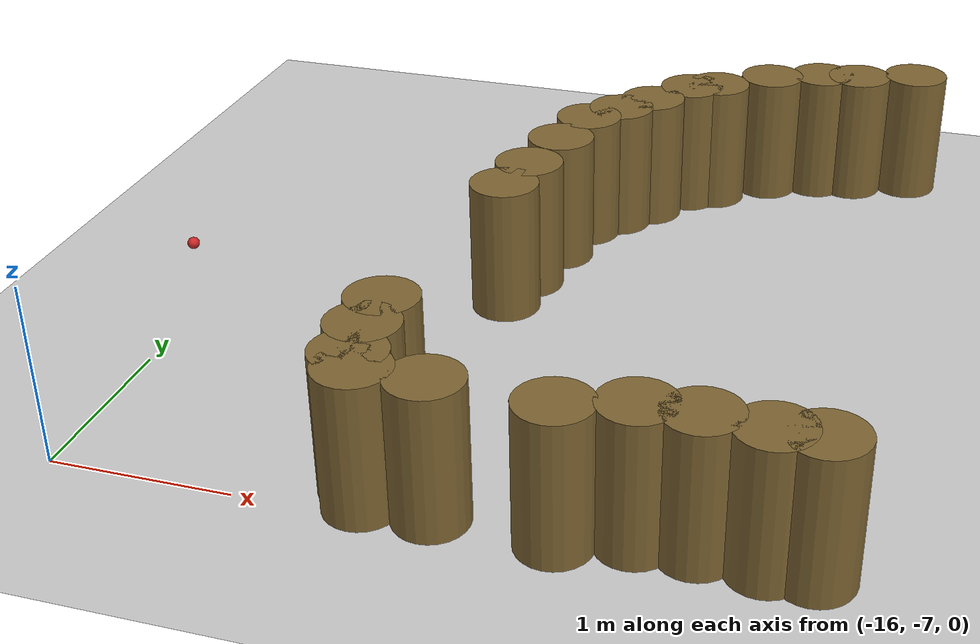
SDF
<sdf version="1.6">
 <world name="default">
  <model name="ground_plane">
   <static>1</static>
   <link name="link">
    <collision name="collision">
     <geometry><plane><normal>0 0 1</normal><size>100 100</size></plane></geometry>
     <surface><friction><ode><mu>100</mu><mu2>50</mu2></ode></friction></surface>
    </collision>
    <visual name="visual">
     <cast_shadows>0</cast_shadows>
     <geometry><plane><normal>0 0 1</normal><size>100 100</size></plane></geometry>
     <material>
      <script><uri>file://media/materials/scripts/gazebo.material</uri><name>Gazebo/Grey</name></script>
     </material>
    </visual>
   </link>
  </model>
  <model name="target_5">
   <link name="link">
    <pose>0 0 0.0375 0 -0 0</pose>
    <inertial>
     <mass>0.1467</mass>
     <inertia>
      <ixx>8.25187e-05</ixx>
      <ixy>0</ixy>
      <ixz>0</ixz>
      <iyy>8.25187e-05</iyy>
      <iyz>0</iyz>
      <izz>8.25187e-05</izz>
     </inertia>
    </inertial>
    <velocity_decay><linear>0</linear><angular>0.005</angular></velocity_decay>
    <visual name="visual">
     <geometry><sphere><radius>0.0375</radius></sphere></geometry>
     <material>
      <script><uri>file://media/materials/scripts/gazebo.material</uri><name>Gazebo/Red</name></script>
      <shader type="pixel"/>
     </material>
    </visual>
    <collision name="collision">
     <geometry><sphere><radius>0.0375</radius></sphere></geometry>
     <surface>
      <friction>
       <ode><mu>1</mu><mu2>1</mu2><fdir1>0 0 0</fdir1><slip1>0</slip1><slip2>0</slip2></ode>
       <torsional>
        <coefficient>1</coefficient>
        <patch_radius>0</patch_radius>
        <surface_radius>0.01</surface_radius>
        <use_patch_radius>0</use_patch_radius>
        <ode><slip>0</slip></ode>
       </torsional>
      </friction>
      <bounce><restitution_coefficient>0</restitution_coefficient><threshold>1e+06</threshold></bounce>
      <contact>
       <collide_without_contact>0</collide_without_contact>
       <collide_without_contact_bitmask>1</collide_without_contact_bitmask>
       <collide_bitmask>1</collide_bitmask>
       <ode>
        <soft_cfm>0</soft_cfm>
        <soft_erp>0.2</soft_erp>
        <kp>100000</kp>
        <kd>100</kd>
        <max_vel>100</max_vel>
        <min_depth>0.001</min_depth>
       </ode>
       <bullet>
        <split_impulse>1</split_impulse>
        <split_impulse_penetration_threshold>-0.01</split_impulse_penetration_threshold>
        <soft_cfm>0</soft_cfm>
        <soft_erp>0.2</soft_erp>
        <kp>100000</kp>
        <kd>100</kd>
       </bullet>
      </contact>
     </surface>
    </collision>
   </link>
   <static>0</static>
   <pose>-16.3973 -4.73224 -0.001014 0 -0 0</pose>
  </model>
  <model name="mini_cylinder_0_clone_0_clone_clone_clone_clone_3_clone">
   <link name="link">
    <inertial>
     <mass>1</mass>
     <inertia><ixx>0.145833</ixx><ixy>0</ixy><ixz>0</ixz><iyy>0.145833</iyy><iyz>0</iyz><izz>0.125</izz></inertia>
    </inertial>
    <visual name="visual">
     <geometry><cylinder><radius>0.2</radius><length>0.8</length></cylinder></geometry>
     <material>
      <script><name>Gazebo/Grey</name><uri>file://media/materials/scripts/gazebo.material</uri></script>
      <shader type="vertex"><normal_map>__default__</normal_map></shader>
      <ambient>0.5 0.4 0.2 1</ambient>
      <diffuse>0.7 0.7 0.7 1</diffuse>
      <specular>0.01 0.01 0.01 1</specular>
      <emissive>0 0 0 1</emissive>
     </material>
    </visual>
    <collision name="collision">
     <geometry><cylinder><radius>0.2</radius><length>0.8</length></cylinder></geometry>
     <surface>
      <friction>
       <ode><mu>1</mu><mu2>1</mu2><fdir1>0 0 0</fdir1><slip1>0</slip1><slip2>0</slip2></ode>
       <torsional>
        <coefficient>1</coefficient>
        <patch_radius>0</patch_radius>
        <surface_radius>0</surface_radius>
        <use_patch_radius>1</use_patch_radius>
        <ode><slip>0</slip></ode>
       </torsional>
      </friction>
      <bounce><restitution_coefficient>0</restitution_coefficient><threshold>1e+06</threshold></bounce>
      <contact>
       <collide_without_contact>0</collide_without_contact>
       <collide_without_contact_bitmask>1</collide_without_contact_bitmask>
       <collide_bitmask>1</collide_bitmask>
       <ode>
        <soft_cfm>0</soft_cfm>
        <soft_erp>0.2</soft_erp>
        <kp>1e+13</kp>
        <kd>1</kd>
        <max_vel>0.01</max_vel>
        <min_depth>0</min_depth>
       </ode>
       <bullet>
        <split_impulse>1</split_impulse>
        <split_impulse_penetration_threshold>-0.01</split_impulse_penetration_threshold>
        <soft_cfm>0</soft_cfm>
        <soft_erp>0.2</soft_erp>
        <kp>1e+13</kp>
        <kd>1</kd>
       </bullet>
      </contact>
     </surface>
    </collision>
   </link>
   <static>1</static>
   <pose>-14.0743 -3.80563 0.4 0 -0 0</pose>
  </model>
  <model name="mini_cylinder_0_clone_0_clone_clone_clone_clone_3_clone_0">
   <link name="link">
    <inertial>
     <mass>1</mass>
     <inertia><ixx>0.145833</ixx><ixy>0</ixy><ixz>0</ixz><iyy>0.145833</iyy><iyz>0</iyz><izz>0.125</izz></inertia>
    </inertial>
    <visual name="visual">
     <geometry><cylinder><radius>0.2</radius><length>0.8</length></cylinder></geometry>
     <material>
      <script><name>Gazebo/Grey</name><uri>file://media/materials/scripts/gazebo.material</uri></script>
      <shader type="vertex"><normal_map>__default__</normal_map></shader>
      <ambient>0.5 0.4 0.2 1</ambient>
      <diffuse>0.7 0.7 0.7 1</diffuse>
      <specular>0.01 0.01 0.01 1</specular>
      <emissive>0 0 0 1</emissive>
     </material>
    </visual>
    <collision name="collision">
     <geometry><cylinder><radius>0.2</radius><length>0.8</length></cylinder></geometry>
     <surface>
      <friction>
       <ode><mu>1</mu><mu2>1</mu2><fdir1>0 0 0</fdir1><slip1>0</slip1><slip2>0</slip2></ode>
       <torsional>
        <coefficient>1</coefficient>
        <patch_radius>0</patch_radius>
        <surface_radius>0</surface_radius>
        <use_patch_radius>1</use_patch_radius>
        <ode><slip>0</slip></ode>
       </torsional>
      </friction>
      <bounce><restitution_coefficient>0</restitution_coefficient><threshold>1e+06</threshold></bounce>
      <contact>
       <collide_without_contact>0</collide_without_contact>
       <collide_without_contact_bitmask>1</collide_without_contact_bitmask>
       <collide_bitmask>1</collide_bitmask>
       <ode>
        <soft_cfm>0</soft_cfm>
        <soft_erp>0.2</soft_erp>
        <kp>1e+13</kp>
        <kd>1</kd>
        <max_vel>0.01</max_vel>
        <min_depth>0</min_depth>
       </ode>
       <bullet>
        <split_impulse>1</split_impulse>
        <split_impulse_penetration_threshold>-0.01</split_impulse_penetration_threshold>
        <soft_cfm>0</soft_cfm>
        <soft_erp>0.2</soft_erp>
        <kp>1e+13</kp>
        <kd>1</kd>
       </bullet>
      </contact>
     </surface>
    </collision>
   </link>
   <static>1</static>
   <pose>-13.7598 -3.41261 0.4 0 -0 0</pose>
  </model>
  <model name="mini_cylinder_0_clone_0_clone_clone_clone_clone_3_clone_1">
   <link name="link">
    <inertial>
     <mass>1</mass>
     <inertia><ixx>0.145833</ixx><ixy>0</ixy><ixz>0</ixz><iyy>0.145833</iyy><iyz>0</iyz><izz>0.125</izz></inertia>
    </inertial>
    <visual name="visual">
     <geometry><cylinder><radius>0.2</radius><length>0.8</length></cylinder></geometry>
     <material>
      <script><name>Gazebo/Grey</name><uri>file://media/materials/scripts/gazebo.material</uri></script>
      <shader type="vertex"><normal_map>__default__</normal_map></shader>
      <ambient>0.5 0.4 0.2 1</ambient>
      <diffuse>0.7 0.7 0.7 1</diffuse>
      <specular>0.01 0.01 0.01 1</specular>
      <emissive>0 0 0 1</emissive>
     </material>
    </visual>
    <collision name="collision">
     <geometry><cylinder><radius>0.2</radius><length>0.8</length></cylinder></geometry>
     <surface>
      <friction>
       <ode><mu>1</mu><mu2>1</mu2><fdir1>0 0 0</fdir1><slip1>0</slip1><slip2>0</slip2></ode>
       <torsional>
        <coefficient>1</coefficient>
        <patch_radius>0</patch_radius>
        <surface_radius>0</surface_radius>
        <use_patch_radius>1</use_patch_radius>
        <ode><slip>0</slip></ode>
       </torsional>
      </friction>
      <bounce><restitution_coefficient>0</restitution_coefficient><threshold>1e+06</threshold></bounce>
      <contact>
       <collide_without_contact>0</collide_without_contact>
       <collide_without_contact_bitmask>1</collide_without_contact_bitmask>
       <collide_bitmask>1</collide_bitmask>
       <ode>
        <soft_cfm>0</soft_cfm>
        <soft_erp>0.2</soft_erp>
        <kp>1e+13</kp>
        <kd>1</kd>
        <max_vel>0.01</max_vel>
        <min_depth>0</min_depth>
       </ode>
       <bullet>
        <split_impulse>1</split_impulse>
        <split_impulse_penetration_threshold>-0.01</split_impulse_penetration_threshold>
        <soft_cfm>0</soft_cfm>
        <soft_erp>0.2</soft_erp>
        <kp>1e+13</kp>
        <kd>1</kd>
       </bullet>
      </contact>
     </surface>
    </collision>
   </link>
   <static>1</static>
   <pose>-13.4068 -3.05888 0.4 0 -0 0</pose>
  </model>
  <model name="mini_cylinder_0_clone_0_clone_clone_clone_clone_3_clone_2">
   <link name="link">
    <inertial>
     <mass>1</mass>
     <inertia><ixx>0.145833</ixx><ixy>0</ixy><ixz>0</ixz><iyy>0.145833</iyy><iyz>0</iyz><izz>0.125</izz></inertia>
    </inertial>
    <visual name="visual">
     <geometry><cylinder><radius>0.2</radius><length>0.8</length></cylinder></geometry>
     <material>
      <script><name>Gazebo/Grey</name><uri>file://media/materials/scripts/gazebo.material</uri></script>
      <shader type="vertex"><normal_map>__default__</normal_map></shader>
      <ambient>0.5 0.4 0.2 1</ambient>
      <diffuse>0.7 0.7 0.7 1</diffuse>
      <specular>0.01 0.01 0.01 1</specular>
      <emissive>0 0 0 1</emissive>
     </material>
    </visual>
    <collision name="collision">
     <geometry><cylinder><radius>0.2</radius><length>0.8</length></cylinder></geometry>
     <surface>
      <friction>
       <ode><mu>1</mu><mu2>1</mu2><fdir1>0 0 0</fdir1><slip1>0</slip1><slip2>0</slip2></ode>
       <torsional>
        <coefficient>1</coefficient>
        <patch_radius>0</patch_radius>
        <surface_radius>0</surface_radius>
        <use_patch_radius>1</use_patch_radius>
        <ode><slip>0</slip></ode>
       </torsional>
      </friction>
      <bounce><restitution_coefficient>0</restitution_coefficient><threshold>1e+06</threshold></bounce>
      <contact>
       <collide_without_contact>0</collide_without_contact>
       <collide_without_contact_bitmask>1</collide_without_contact_bitmask>
       <collide_bitmask>1</collide_bitmask>
       <ode>
        <soft_cfm>0</soft_cfm>
        <soft_erp>0.2</soft_erp>
        <kp>1e+13</kp>
        <kd>1</kd>
        <max_vel>0.01</max_vel>
        <min_depth>0</min_depth>
       </ode>
       <bullet>
        <split_impulse>1</split_impulse>
        <split_impulse_penetration_threshold>-0.01</split_impulse_penetration_threshold>
        <soft_cfm>0</soft_cfm>
        <soft_erp>0.2</soft_erp>
        <kp>1e+13</kp>
        <kd>1</kd>
       </bullet>
      </contact>
     </surface>
    </collision>
   </link>
   <static>1</static>
   <pose>-13.0931 -2.82342 0.4 0 -0 0</pose>
  </model>
  <model name="mini_cylinder_0_clone_0_clone_clone_clone_clone_3_clone_3">
   <link name="link">
    <inertial>
     <mass>1</mass>
     <inertia><ixx>0.145833</ixx><ixy>0</ixy><ixz>0</ixz><iyy>0.145833</iyy><iyz>0</iyz><izz>0.125</izz></inertia>
    </inertial>
    <visual name="visual">
     <geometry><cylinder><radius>0.2</radius><length>0.8</length></cylinder></geometry>
     <material>
      <script><name>Gazebo/Grey</name><uri>file://media/materials/scripts/gazebo.material</uri></script>
      <shader type="vertex"><normal_map>__default__</normal_map></shader>
      <ambient>0.5 0.4 0.2 1</ambient>
      <diffuse>0.7 0.7 0.7 1</diffuse>
      <specular>0.01 0.01 0.01 1</specular>
      <emissive>0 0 0 1</emissive>
     </material>
    </visual>
    <collision name="collision">
     <geometry><cylinder><radius>0.2</radius><length>0.8</length></cylinder></geometry>
     <surface>
      <friction>
       <ode><mu>1</mu><mu2>1</mu2><fdir1>0 0 0</fdir1><slip1>0</slip1><slip2>0</slip2></ode>
       <torsional>
        <coefficient>1</coefficient>
        <patch_radius>0</patch_radius>
        <surface_radius>0</surface_radius>
        <use_patch_radius>1</use_patch_radius>
        <ode><slip>0</slip></ode>
       </torsional>
      </friction>
      <bounce><restitution_coefficient>0</restitution_coefficient><threshold>1e+06</threshold></bounce>
      <contact>
       <collide_without_contact>0</collide_without_contact>
       <collide_without_contact_bitmask>1</collide_without_contact_bitmask>
       <collide_bitmask>1</collide_bitmask>
       <ode>
        <soft_cfm>0</soft_cfm>
        <soft_erp>0.2</soft_erp>
        <kp>1e+13</kp>
        <kd>1</kd>
        <max_vel>0.01</max_vel>
        <min_depth>0</min_depth>
       </ode>
       <bullet>
        <split_impulse>1</split_impulse>
        <split_impulse_penetration_threshold>-0.01</split_impulse_penetration_threshold>
        <soft_cfm>0</soft_cfm>
        <soft_erp>0.2</soft_erp>
        <kp>1e+13</kp>
        <kd>1</kd>
       </bullet>
      </contact>
     </surface>
    </collision>
   </link>
   <static>1</static>
   <pose>-12.5422 -2.66693 0.4 0 -0 0</pose>
  </model>
  <model name="mini_cylinder_0_clone_0_clone_clone_clone_clone_3_clone_4">
   <link name="link">
    <inertial>
     <mass>1</mass>
     <inertia><ixx>0.145833</ixx><ixy>0</ixy><ixz>0</ixz><iyy>0.145833</iyy><iyz>0</iyz><izz>0.125</izz></inertia>
    </inertial>
    <visual name="visual">
     <geometry><cylinder><radius>0.2</radius><length>0.8</length></cylinder></geometry>
     <material>
      <script><name>Gazebo/Grey</name><uri>file://media/materials/scripts/gazebo.material</uri></script>
      <shader type="vertex"><normal_map>__default__</normal_map></shader>
      <ambient>0.5 0.4 0.2 1</ambient>
      <diffuse>0.7 0.7 0.7 1</diffuse>
      <specular>0.01 0.01 0.01 1</specular>
      <emissive>0 0 0 1</emissive>
     </material>
    </visual>
    <collision name="collision">
     <geometry><cylinder><radius>0.2</radius><length>0.8</length></cylinder></geometry>
     <surface>
      <friction>
       <ode><mu>1</mu><mu2>1</mu2><fdir1>0 0 0</fdir1><slip1>0</slip1><slip2>0</slip2></ode>
       <torsional>
        <coefficient>1</coefficient>
        <patch_radius>0</patch_radius>
        <surface_radius>0</surface_radius>
        <use_patch_radius>1</use_patch_radius>
        <ode><slip>0</slip></ode>
       </torsional>
      </friction>
      <bounce><restitution_coefficient>0</restitution_coefficient><threshold>1e+06</threshold></bounce>
      <contact>
       <collide_without_contact>0</collide_without_contact>
       <collide_without_contact_bitmask>1</collide_without_contact_bitmask>
       <collide_bitmask>1</collide_bitmask>
       <ode>
        <soft_cfm>0</soft_cfm>
        <soft_erp>0.2</soft_erp>
        <kp>1e+13</kp>
        <kd>1</kd>
        <max_vel>0.01</max_vel>
        <min_depth>0</min_depth>
       </ode>
       <bullet>
        <split_impulse>1</split_impulse>
        <split_impulse_penetration_threshold>-0.01</split_impulse_penetration_threshold>
        <soft_cfm>0</soft_cfm>
        <soft_erp>0.2</soft_erp>
        <kp>1e+13</kp>
        <kd>1</kd>
       </bullet>
      </contact>
     </surface>
    </collision>
   </link>
   <static>1</static>
   <pose>-12.7787 -2.70587 0.4 0 -0 0</pose>
  </model>
  <model name="mini_cylinder_0_clone_0_clone_clone_clone_clone_3_clone_5">
   <link name="link">
    <inertial>
     <mass>1</mass>
     <inertia><ixx>0.145833</ixx><ixy>0</ixy><ixz>0</ixz><iyy>0.145833</iyy><iyz>0</iyz><izz>0.125</izz></inertia>
    </inertial>
    <visual name="visual">
     <geometry><cylinder><radius>0.2</radius><length>0.8</length></cylinder></geometry>
     <material>
      <script><name>Gazebo/Grey</name><uri>file://media/materials/scripts/gazebo.material</uri></script>
      <shader type="vertex"><normal_map>__default__</normal_map></shader>
      <ambient>0.5 0.4 0.2 1</ambient>
      <diffuse>0.7 0.7 0.7 1</diffuse>
      <specular>0.01 0.01 0.01 1</specular>
      <emissive>0 0 0 1</emissive>
     </material>
    </visual>
    <collision name="collision">
     <geometry><cylinder><radius>0.2</radius><length>0.8</length></cylinder></geometry>
     <surface>
      <friction>
       <ode><mu>1</mu><mu2>1</mu2><fdir1>0 0 0</fdir1><slip1>0</slip1><slip2>0</slip2></ode>
       <torsional>
        <coefficient>1</coefficient>
        <patch_radius>0</patch_radius>
        <surface_radius>0</surface_radius>
        <use_patch_radius>1</use_patch_radius>
        <ode><slip>0</slip></ode>
       </torsional>
      </friction>
      <bounce><restitution_coefficient>0</restitution_coefficient><threshold>1e+06</threshold></bounce>
      <contact>
       <collide_without_contact>0</collide_without_contact>
       <collide_without_contact_bitmask>1</collide_without_contact_bitmask>
       <collide_bitmask>1</collide_bitmask>
       <ode>
        <soft_cfm>0</soft_cfm>
        <soft_erp>0.2</soft_erp>
        <kp>1e+13</kp>
        <kd>1</kd>
        <max_vel>0.01</max_vel>
        <min_depth>0</min_depth>
       </ode>
       <bullet>
        <split_impulse>1</split_impulse>
        <split_impulse_penetration_threshold>-0.01</split_impulse_penetration_threshold>
        <soft_cfm>0</soft_cfm>
        <soft_erp>0.2</soft_erp>
        <kp>1e+13</kp>
        <kd>1</kd>
       </bullet>
      </contact>
     </surface>
    </collision>
   </link>
   <static>1</static>
   <pose>-12.1892 -2.54938 0.4 0 -0 0</pose>
  </model>
  <model name="mini_cylinder_0_clone_0_clone_clone_clone_clone_3_clone_19">
   <link name="link">
    <inertial>
     <mass>1</mass>
     <inertia><ixx>0.145833</ixx><ixy>0</ixy><ixz>0</ixz><iyy>0.145833</iyy><iyz>0</iyz><izz>0.125</izz></inertia>
    </inertial>
    <visual name="visual">
     <geometry><cylinder><radius>0.2</radius><length>0.8</length></cylinder></geometry>
     <material>
      <script><name>Gazebo/Grey</name><uri>file://media/materials/scripts/gazebo.material</uri></script>
      <shader type="vertex"><normal_map>__default__</normal_map></shader>
      <ambient>0.5 0.4 0.2 1</ambient>
      <diffuse>0.7 0.7 0.7 1</diffuse>
      <specular>0.01 0.01 0.01 1</specular>
      <emissive>0 0 0 1</emissive>
     </material>
    </visual>
    <collision name="collision">
     <geometry><cylinder><radius>0.2</radius><length>0.8</length></cylinder></geometry>
     <surface>
      <friction>
       <ode><mu>1</mu><mu2>1</mu2><fdir1>0 0 0</fdir1><slip1>0</slip1><slip2>0</slip2></ode>
       <torsional>
        <coefficient>1</coefficient>
        <patch_radius>0</patch_radius>
        <surface_radius>0</surface_radius>
        <use_patch_radius>1</use_patch_radius>
        <ode><slip>0</slip></ode>
       </torsional>
      </friction>
      <bounce><restitution_coefficient>0</restitution_coefficient><threshold>1e+06</threshold></bounce>
      <contact>
       <collide_without_contact>0</collide_without_contact>
       <collide_without_contact_bitmask>1</collide_without_contact_bitmask>
       <collide_bitmask>1</collide_bitmask>
       <ode>
        <soft_cfm>0</soft_cfm>
        <soft_erp>0.2</soft_erp>
        <kp>1e+13</kp>
        <kd>1</kd>
        <max_vel>0.01</max_vel>
        <min_depth>0</min_depth>
       </ode>
       <bullet>
        <split_impulse>1</split_impulse>
        <split_impulse_penetration_threshold>-0.01</split_impulse_penetration_threshold>
        <soft_cfm>0</soft_cfm>
        <soft_erp>0.2</soft_erp>
        <kp>1e+13</kp>
        <kd>1</kd>
       </bullet>
      </contact>
     </surface>
    </collision>
   </link>
   <static>1</static>
   <pose>-14.1529 -4.159 0.4 0 -0 0</pose>
  </model>
  <model name="mini_cylinder_0_clone_0_clone_clone_clone_clone_3_clone_20">
   <link name="link">
    <inertial>
     <mass>1</mass>
     <inertia><ixx>0.145833</ixx><ixy>0</ixy><ixz>0</ixz><iyy>0.145833</iyy><iyz>0</iyz><izz>0.125</izz></inertia>
    </inertial>
    <visual name="visual">
     <geometry><cylinder><radius>0.2</radius><length>0.8</length></cylinder></geometry>
     <material>
      <script><name>Gazebo/Grey</name><uri>file://media/materials/scripts/gazebo.material</uri></script>
      <shader type="vertex"><normal_map>__default__</normal_map></shader>
      <ambient>0.5 0.4 0.2 1</ambient>
      <diffuse>0.7 0.7 0.7 1</diffuse>
      <specular>0.01 0.01 0.01 1</specular>
      <emissive>0 0 0 1</emissive>
     </material>
    </visual>
    <collision name="collision">
     <geometry><cylinder><radius>0.2</radius><length>0.8</length></cylinder></geometry>
     <surface>
      <friction>
       <ode><mu>1</mu><mu2>1</mu2><fdir1>0 0 0</fdir1><slip1>0</slip1><slip2>0</slip2></ode>
       <torsional>
        <coefficient>1</coefficient>
        <patch_radius>0</patch_radius>
        <surface_radius>0</surface_radius>
        <use_patch_radius>1</use_patch_radius>
        <ode><slip>0</slip></ode>
       </torsional>
      </friction>
      <bounce><restitution_coefficient>0</restitution_coefficient><threshold>1e+06</threshold></bounce>
      <contact>
       <collide_without_contact>0</collide_without_contact>
       <collide_without_contact_bitmask>1</collide_without_contact_bitmask>
       <collide_bitmask>1</collide_bitmask>
       <ode>
        <soft_cfm>0</soft_cfm>
        <soft_erp>0.2</soft_erp>
        <kp>1e+13</kp>
        <kd>1</kd>
        <max_vel>0.01</max_vel>
        <min_depth>0</min_depth>
       </ode>
       <bullet>
        <split_impulse>1</split_impulse>
        <split_impulse_penetration_threshold>-0.01</split_impulse_penetration_threshold>
        <soft_cfm>0</soft_cfm>
        <soft_erp>0.2</soft_erp>
        <kp>1e+13</kp>
        <kd>1</kd>
       </bullet>
      </contact>
     </surface>
    </collision>
   </link>
   <static>1</static>
   <pose>-14.2315 -4.55202 0.4 0 -0 0</pose>
  </model>
  <model name="mini_cylinder_0_clone_0_clone_clone_clone_clone_3_clone_21">
   <link name="link">
    <inertial>
     <mass>1</mass>
     <inertia><ixx>0.145833</ixx><ixy>0</ixy><ixz>0</ixz><iyy>0.145833</iyy><iyz>0</iyz><izz>0.125</izz></inertia>
    </inertial>
    <visual name="visual">
     <geometry><cylinder><radius>0.2</radius><length>0.8</length></cylinder></geometry>
     <material>
      <script><name>Gazebo/Grey</name><uri>file://media/materials/scripts/gazebo.material</uri></script>
      <shader type="vertex"><normal_map>__default__</normal_map></shader>
      <ambient>0.5 0.4 0.2 1</ambient>
      <diffuse>0.7 0.7 0.7 1</diffuse>
      <specular>0.01 0.01 0.01 1</specular>
      <emissive>0 0 0 1</emissive>
     </material>
    </visual>
    <collision name="collision">
     <geometry><cylinder><radius>0.2</radius><length>0.8</length></cylinder></geometry>
     <surface>
      <friction>
       <ode><mu>1</mu><mu2>1</mu2><fdir1>0 0 0</fdir1><slip1>0</slip1><slip2>0</slip2></ode>
       <torsional>
        <coefficient>1</coefficient>
        <patch_radius>0</patch_radius>
        <surface_radius>0</surface_radius>
        <use_patch_radius>1</use_patch_radius>
        <ode><slip>0</slip></ode>
       </torsional>
      </friction>
      <bounce><restitution_coefficient>0</restitution_coefficient><threshold>1e+06</threshold></bounce>
      <contact>
       <collide_without_contact>0</collide_without_contact>
       <collide_without_contact_bitmask>1</collide_without_contact_bitmask>
       <collide_bitmask>1</collide_bitmask>
       <ode>
        <soft_cfm>0</soft_cfm>
        <soft_erp>0.2</soft_erp>
        <kp>1e+13</kp>
        <kd>1</kd>
        <max_vel>0.01</max_vel>
        <min_depth>0</min_depth>
       </ode>
       <bullet>
        <split_impulse>1</split_impulse>
        <split_impulse_penetration_threshold>-0.01</split_impulse_penetration_threshold>
        <soft_cfm>0</soft_cfm>
        <soft_erp>0.2</soft_erp>
        <kp>1e+13</kp>
        <kd>1</kd>
       </bullet>
      </contact>
     </surface>
    </collision>
   </link>
   <static>1</static>
   <pose>-13.9171 -3.60876 0.4 0 -0 0</pose>
  </model>
  <model name="mini_cylinder_0_clone_0_clone_clone_clone_clone_3_clone_22">
   <link name="link">
    <inertial>
     <mass>1</mass>
     <inertia><ixx>0.145833</ixx><ixy>0</ixy><ixz>0</ixz><iyy>0.145833</iyy><iyz>0</iyz><izz>0.125</izz></inertia>
    </inertial>
    <visual name="visual">
     <geometry><cylinder><radius>0.2</radius><length>0.8</length></cylinder></geometry>
     <material>
      <script><name>Gazebo/Grey</name><uri>file://media/materials/scripts/gazebo.material</uri></script>
      <shader type="vertex"><normal_map>__default__</normal_map></shader>
      <ambient>0.5 0.4 0.2 1</ambient>
      <diffuse>0.7 0.7 0.7 1</diffuse>
      <specular>0.01 0.01 0.01 1</specular>
      <emissive>0 0 0 1</emissive>
     </material>
    </visual>
    <collision name="collision">
     <geometry><cylinder><radius>0.2</radius><length>0.8</length></cylinder></geometry>
     <surface>
      <friction>
       <ode><mu>1</mu><mu2>1</mu2><fdir1>0 0 0</fdir1><slip1>0</slip1><slip2>0</slip2></ode>
       <torsional>
        <coefficient>1</coefficient>
        <patch_radius>0</patch_radius>
        <surface_radius>0</surface_radius>
        <use_patch_radius>1</use_patch_radius>
        <ode><slip>0</slip></ode>
       </torsional>
      </friction>
      <bounce><restitution_coefficient>0</restitution_coefficient><threshold>1e+06</threshold></bounce>
      <contact>
       <collide_without_contact>0</collide_without_contact>
       <collide_without_contact_bitmask>1</collide_without_contact_bitmask>
       <collide_bitmask>1</collide_bitmask>
       <ode>
        <soft_cfm>0</soft_cfm>
        <soft_erp>0.2</soft_erp>
        <kp>1e+13</kp>
        <kd>1</kd>
        <max_vel>0.01</max_vel>
        <min_depth>0</min_depth>
       </ode>
       <bullet>
        <split_impulse>1</split_impulse>
        <split_impulse_penetration_threshold>-0.01</split_impulse_penetration_threshold>
        <soft_cfm>0</soft_cfm>
        <soft_erp>0.2</soft_erp>
        <kp>1e+13</kp>
        <kd>1</kd>
       </bullet>
      </contact>
     </surface>
    </collision>
   </link>
   <static>1</static>
   <pose>-13.564 -3.14385 0.4 0 -0 0</pose>
  </model>
  <model name="mini_cylinder_0_clone_0_clone_clone_clone_clone_3_clone_20_clone_104">
   <link name="link">
    <inertial>
     <mass>1</mass>
     <inertia><ixx>0.145833</ixx><ixy>0</ixy><ixz>0</ixz><iyy>0.145833</iyy><iyz>0</iyz><izz>0.125</izz></inertia>
    </inertial>
    <visual name="visual">
     <geometry><cylinder><radius>0.2</radius><length>0.8</length></cylinder></geometry>
     <material>
      <script><name>Gazebo/Grey</name><uri>file://media/materials/scripts/gazebo.material</uri></script>
      <shader type="vertex"><normal_map>__default__</normal_map></shader>
      <ambient>0.5 0.4 0.2 1</ambient>
      <diffuse>0.7 0.7 0.7 1</diffuse>
      <specular>0.01 0.01 0.01 1</specular>
      <emissive>0 0 0 1</emissive>
     </material>
    </visual>
    <collision name="collision">
     <geometry><cylinder><radius>0.2</radius><length>0.8</length></cylinder></geometry>
     <surface>
      <friction>
       <ode><mu>1</mu><mu2>1</mu2><fdir1>0 0 0</fdir1><slip1>0</slip1><slip2>0</slip2></ode>
       <torsional>
        <coefficient>1</coefficient>
        <patch_radius>0</patch_radius>
        <surface_radius>0</surface_radius>
        <use_patch_radius>1</use_patch_radius>
        <ode><slip>0</slip></ode>
       </torsional>
      </friction>
      <bounce><restitution_coefficient>0</restitution_coefficient><threshold>1e+06</threshold></bounce>
      <contact>
       <collide_without_contact>0</collide_without_contact>
       <collide_without_contact_bitmask>1</collide_without_contact_bitmask>
       <collide_bitmask>1</collide_bitmask>
       <ode>
        <soft_cfm>0</soft_cfm>
        <soft_erp>0.2</soft_erp>
        <kp>1e+13</kp>
        <kd>1</kd>
        <max_vel>0.01</max_vel>
        <min_depth>0</min_depth>
       </ode>
       <bullet>
        <split_impulse>1</split_impulse>
        <split_impulse_penetration_threshold>-0.01</split_impulse_penetration_threshold>
        <soft_cfm>0</soft_cfm>
        <soft_erp>0.2</soft_erp>
        <kp>1e+13</kp>
        <kd>1</kd>
       </bullet>
      </contact>
     </surface>
    </collision>
   </link>
   <static>1</static>
   <pose>-14.2837 -4.86049 0.4 0 -0 0</pose>
  </model>
  <model name="mini_cylinder_0_clone_0_clone_clone_clone_clone_3_clone_20_clone_106">
   <link name="link">
    <inertial>
     <mass>1</mass>
     <inertia><ixx>0.145833</ixx><ixy>0</ixy><ixz>0</ixz><iyy>0.145833</iyy><iyz>0</iyz><izz>0.125</izz></inertia>
    </inertial>
    <visual name="visual">
     <geometry><cylinder><radius>0.2</radius><length>0.8</length></cylinder></geometry>
     <material>
      <script><name>Gazebo/Grey</name><uri>file://media/materials/scripts/gazebo.material</uri></script>
      <shader type="vertex"><normal_map>__default__</normal_map></shader>
      <ambient>0.5 0.4 0.2 1</ambient>
      <diffuse>0.7 0.7 0.7 1</diffuse>
      <specular>0.01 0.01 0.01 1</specular>
      <emissive>0 0 0 1</emissive>
     </material>
    </visual>
    <collision name="collision">
     <geometry><cylinder><radius>0.2</radius><length>0.8</length></cylinder></geometry>
     <surface>
      <friction>
       <ode><mu>1</mu><mu2>1</mu2><fdir1>0 0 0</fdir1><slip1>0</slip1><slip2>0</slip2></ode>
       <torsional>
        <coefficient>1</coefficient>
        <patch_radius>0</patch_radius>
        <surface_radius>0</surface_radius>
        <use_patch_radius>1</use_patch_radius>
        <ode><slip>0</slip></ode>
       </torsional>
      </friction>
      <bounce><restitution_coefficient>0</restitution_coefficient><threshold>1e+06</threshold></bounce>
      <contact>
       <collide_without_contact>0</collide_without_contact>
       <collide_without_contact_bitmask>1</collide_without_contact_bitmask>
       <collide_bitmask>1</collide_bitmask>
       <ode>
        <soft_cfm>0</soft_cfm>
        <soft_erp>0.2</soft_erp>
        <kp>1e+13</kp>
        <kd>1</kd>
        <max_vel>0.01</max_vel>
        <min_depth>0</min_depth>
       </ode>
       <bullet>
        <split_impulse>1</split_impulse>
        <split_impulse_penetration_threshold>-0.01</split_impulse_penetration_threshold>
        <soft_cfm>0</soft_cfm>
        <soft_erp>0.2</soft_erp>
        <kp>1e+13</kp>
        <kd>1</kd>
       </bullet>
      </contact>
     </surface>
    </collision>
   </link>
   <static>1</static>
   <pose>-14.3477 -6.90783 0.4 0 -0 0</pose>
  </model>
  <model name="mini_cylinder_0_clone_0_clone_clone_clone_clone_3_clone_20_clone_107">
   <link name="link">
    <inertial>
     <mass>1</mass>
     <inertia><ixx>0.145833</ixx><ixy>0</ixy><ixz>0</ixz><iyy>0.145833</iyy><iyz>0</iyz><izz>0.125</izz></inertia>
    </inertial>
    <visual name="visual">
     <geometry><cylinder><radius>0.2</radius><length>0.8</length></cylinder></geometry>
     <material>
      <script><name>Gazebo/Grey</name><uri>file://media/materials/scripts/gazebo.material</uri></script>
      <shader type="vertex"><normal_map>__default__</normal_map></shader>
      <ambient>0.5 0.4 0.2 1</ambient>
      <diffuse>0.7 0.7 0.7 1</diffuse>
      <specular>0.01 0.01 0.01 1</specular>
      <emissive>0 0 0 1</emissive>
     </material>
    </visual>
    <collision name="collision">
     <geometry><cylinder><radius>0.2</radius><length>0.8</length></cylinder></geometry>
     <surface>
      <friction>
       <ode><mu>1</mu><mu2>1</mu2><fdir1>0 0 0</fdir1><slip1>0</slip1><slip2>0</slip2></ode>
       <torsional>
        <coefficient>1</coefficient>
        <patch_radius>0</patch_radius>
        <surface_radius>0</surface_radius>
        <use_patch_radius>1</use_patch_radius>
        <ode><slip>0</slip></ode>
       </torsional>
      </friction>
      <bounce><restitution_coefficient>0</restitution_coefficient><threshold>1e+06</threshold></bounce>
      <contact>
       <collide_without_contact>0</collide_without_contact>
       <collide_without_contact_bitmask>1</collide_without_contact_bitmask>
       <collide_bitmask>1</collide_bitmask>
       <ode>
        <soft_cfm>0</soft_cfm>
        <soft_erp>0.2</soft_erp>
        <kp>1e+13</kp>
        <kd>1</kd>
        <max_vel>0.01</max_vel>
        <min_depth>0</min_depth>
       </ode>
       <bullet>
        <split_impulse>1</split_impulse>
        <split_impulse_penetration_threshold>-0.01</split_impulse_penetration_threshold>
        <soft_cfm>0</soft_cfm>
        <soft_erp>0.2</soft_erp>
        <kp>1e+13</kp>
        <kd>1</kd>
       </bullet>
      </contact>
     </surface>
    </collision>
   </link>
   <static>1</static>
   <pose>-13.9959 -6.90283 0.4 0 -0 0</pose>
  </model>
  <model name="mini_cylinder_0_clone_0_clone_clone_clone_clone_3_clone_20_clone_109">
   <link name="link">
    <inertial>
     <mass>1</mass>
     <inertia><ixx>0.145833</ixx><ixy>0</ixy><ixz>0</ixz><iyy>0.145833</iyy><iyz>0</iyz><izz>0.125</izz></inertia>
    </inertial>
    <visual name="visual">
     <geometry><cylinder><radius>0.2</radius><length>0.8</length></cylinder></geometry>
     <material>
      <script><name>Gazebo/Grey</name><uri>file://media/materials/scripts/gazebo.material</uri></script>
      <shader type="vertex"><normal_map>__default__</normal_map></shader>
      <ambient>0.5 0.4 0.2 1</ambient>
      <diffuse>0.7 0.7 0.7 1</diffuse>
      <specular>0.01 0.01 0.01 1</specular>
      <emissive>0 0 0 1</emissive>
     </material>
    </visual>
    <collision name="collision">
     <geometry><cylinder><radius>0.2</radius><length>0.8</length></cylinder></geometry>
     <surface>
      <friction>
       <ode><mu>1</mu><mu2>1</mu2><fdir1>0 0 0</fdir1><slip1>0</slip1><slip2>0</slip2></ode>
       <torsional>
        <coefficient>1</coefficient>
        <patch_radius>0</patch_radius>
        <surface_radius>0</surface_radius>
        <use_patch_radius>1</use_patch_radius>
        <ode><slip>0</slip></ode>
       </torsional>
      </friction>
      <bounce><restitution_coefficient>0</restitution_coefficient><threshold>1e+06</threshold></bounce>
      <contact>
       <collide_without_contact>0</collide_without_contact>
       <collide_without_contact_bitmask>1</collide_without_contact_bitmask>
       <collide_bitmask>1</collide_bitmask>
       <ode>
        <soft_cfm>0</soft_cfm>
        <soft_erp>0.2</soft_erp>
        <kp>1e+13</kp>
        <kd>1</kd>
        <max_vel>0.01</max_vel>
        <min_depth>0</min_depth>
       </ode>
       <bullet>
        <split_impulse>1</split_impulse>
        <split_impulse_penetration_threshold>-0.01</split_impulse_penetration_threshold>
        <soft_cfm>0</soft_cfm>
        <soft_erp>0.2</soft_erp>
        <kp>1e+13</kp>
        <kd>1</kd>
       </bullet>
      </contact>
     </surface>
    </collision>
   </link>
   <static>1</static>
   <pose>-13.3789 -6.92527 0.4 0 -0 0</pose>
  </model>
  <model name="mini_cylinder_0_clone_0_clone_clone_clone_clone_3_clone_20_clone_110">
   <link name="link">
    <inertial>
     <mass>1</mass>
     <inertia><ixx>0.145833</ixx><ixy>0</ixy><ixz>0</ixz><iyy>0.145833</iyy><iyz>0</iyz><izz>0.125</izz></inertia>
    </inertial>
    <visual name="visual">
     <geometry><cylinder><radius>0.2</radius><length>0.8</length></cylinder></geometry>
     <material>
      <script><name>Gazebo/Grey</name><uri>file://media/materials/scripts/gazebo.material</uri></script>
      <shader type="vertex"><normal_map>__default__</normal_map></shader>
      <ambient>0.5 0.4 0.2 1</ambient>
      <diffuse>0.7 0.7 0.7 1</diffuse>
      <specular>0.01 0.01 0.01 1</specular>
      <emissive>0 0 0 1</emissive>
     </material>
    </visual>
    <collision name="collision">
     <geometry><cylinder><radius>0.2</radius><length>0.8</length></cylinder></geometry>
     <surface>
      <friction>
       <ode><mu>1</mu><mu2>1</mu2><fdir1>0 0 0</fdir1><slip1>0</slip1><slip2>0</slip2></ode>
       <torsional>
        <coefficient>1</coefficient>
        <patch_radius>0</patch_radius>
        <surface_radius>0</surface_radius>
        <use_patch_radius>1</use_patch_radius>
        <ode><slip>0</slip></ode>
       </torsional>
      </friction>
      <bounce><restitution_coefficient>0</restitution_coefficient><threshold>1e+06</threshold></bounce>
      <contact>
       <collide_without_contact>0</collide_without_contact>
       <collide_without_contact_bitmask>1</collide_without_contact_bitmask>
       <collide_bitmask>1</collide_bitmask>
       <ode>
        <soft_cfm>0</soft_cfm>
        <soft_erp>0.2</soft_erp>
        <kp>1e+13</kp>
        <kd>1</kd>
        <max_vel>0.01</max_vel>
        <min_depth>0</min_depth>
       </ode>
       <bullet>
        <split_impulse>1</split_impulse>
        <split_impulse_penetration_threshold>-0.01</split_impulse_penetration_threshold>
        <soft_cfm>0</soft_cfm>
        <soft_erp>0.2</soft_erp>
        <kp>1e+13</kp>
        <kd>1</kd>
       </bullet>
      </contact>
     </surface>
    </collision>
   </link>
   <static>1</static>
   <pose>-13.0235 -6.82266 0.4 0 -0 0</pose>
  </model>
  <model name="mini_cylinder_0_clone_0_clone_clone_clone_clone_3_clone_20_clone_111">
   <link name="link">
    <inertial>
     <mass>1</mass>
     <inertia><ixx>0.145833</ixx><ixy>0</ixy><ixz>0</ixz><iyy>0.145833</iyy><iyz>0</iyz><izz>0.125</izz></inertia>
    </inertial>
    <visual name="visual">
     <geometry><cylinder><radius>0.2</radius><length>0.8</length></cylinder></geometry>
     <material>
      <script><name>Gazebo/Grey</name><uri>file://media/materials/scripts/gazebo.material</uri></script>
      <shader type="vertex"><normal_map>__default__</normal_map></shader>
      <ambient>0.5 0.4 0.2 1</ambient>
      <diffuse>0.7 0.7 0.7 1</diffuse>
      <specular>0.01 0.01 0.01 1</specular>
      <emissive>0 0 0 1</emissive>
     </material>
    </visual>
    <collision name="collision">
     <geometry><cylinder><radius>0.2</radius><length>0.8</length></cylinder></geometry>
     <surface>
      <friction>
       <ode><mu>1</mu><mu2>1</mu2><fdir1>0 0 0</fdir1><slip1>0</slip1><slip2>0</slip2></ode>
       <torsional>
        <coefficient>1</coefficient>
        <patch_radius>0</patch_radius>
        <surface_radius>0</surface_radius>
        <use_patch_radius>1</use_patch_radius>
        <ode><slip>0</slip></ode>
       </torsional>
      </friction>
      <bounce><restitution_coefficient>0</restitution_coefficient><threshold>1e+06</threshold></bounce>
      <contact>
       <collide_without_contact>0</collide_without_contact>
       <collide_without_contact_bitmask>1</collide_without_contact_bitmask>
       <collide_bitmask>1</collide_bitmask>
       <ode>
        <soft_cfm>0</soft_cfm>
        <soft_erp>0.2</soft_erp>
        <kp>1e+13</kp>
        <kd>1</kd>
        <max_vel>0.01</max_vel>
        <min_depth>0</min_depth>
       </ode>
       <bullet>
        <split_impulse>1</split_impulse>
        <split_impulse_penetration_threshold>-0.01</split_impulse_penetration_threshold>
        <soft_cfm>0</soft_cfm>
        <soft_erp>0.2</soft_erp>
        <kp>1e+13</kp>
        <kd>1</kd>
       </bullet>
      </contact>
     </surface>
    </collision>
   </link>
   <static>1</static>
   <pose>-12.7313 -6.81796 0.4 0 -0 0</pose>
  </model>
  <model name="mini_cylinder_0_clone_0_clone_clone_clone_clone_3_clone_20_clone_112">
   <link name="link">
    <inertial>
     <mass>1</mass>
     <inertia><ixx>0.145833</ixx><ixy>0</ixy><ixz>0</ixz><iyy>0.145833</iyy><iyz>0</iyz><izz>0.125</izz></inertia>
    </inertial>
    <visual name="visual">
     <geometry><cylinder><radius>0.2</radius><length>0.8</length></cylinder></geometry>
     <material>
      <script><name>Gazebo/Grey</name><uri>file://media/materials/scripts/gazebo.material</uri></script>
      <shader type="vertex"><normal_map>__default__</normal_map></shader>
      <ambient>0.5 0.4 0.2 1</ambient>
      <diffuse>0.7 0.7 0.7 1</diffuse>
      <specular>0.01 0.01 0.01 1</specular>
      <emissive>0 0 0 1</emissive>
     </material>
    </visual>
    <collision name="collision">
     <geometry><cylinder><radius>0.2</radius><length>0.8</length></cylinder></geometry>
     <surface>
      <friction>
       <ode><mu>1</mu><mu2>1</mu2><fdir1>0 0 0</fdir1><slip1>0</slip1><slip2>0</slip2></ode>
       <torsional>
        <coefficient>1</coefficient>
        <patch_radius>0</patch_radius>
        <surface_radius>0</surface_radius>
        <use_patch_radius>1</use_patch_radius>
        <ode><slip>0</slip></ode>
       </torsional>
      </friction>
      <bounce><restitution_coefficient>0</restitution_coefficient><threshold>1e+06</threshold></bounce>
      <contact>
       <collide_without_contact>0</collide_without_contact>
       <collide_without_contact_bitmask>1</collide_without_contact_bitmask>
       <collide_bitmask>1</collide_bitmask>
       <ode>
        <soft_cfm>0</soft_cfm>
        <soft_erp>0.2</soft_erp>
        <kp>1e+13</kp>
        <kd>1</kd>
        <max_vel>0.01</max_vel>
        <min_depth>0</min_depth>
       </ode>
       <bullet>
        <split_impulse>1</split_impulse>
        <split_impulse_penetration_threshold>-0.01</split_impulse_penetration_threshold>
        <soft_cfm>0</soft_cfm>
        <soft_erp>0.2</soft_erp>
        <kp>1e+13</kp>
        <kd>1</kd>
       </bullet>
      </contact>
     </surface>
    </collision>
   </link>
   <static>1</static>
   <pose>-12.4059 -6.84545 0.4 0 -0 0</pose>
  </model>
  <model name="mini_cylinder_0_clone_0_clone_clone_clone_clone_3_clone_20_clone_113">
   <link name="link">
    <inertial>
     <mass>1</mass>
     <inertia><ixx>0.145833</ixx><ixy>0</ixy><ixz>0</ixz><iyy>0.145833</iyy><iyz>0</iyz><izz>0.125</izz></inertia>
    </inertial>
    <visual name="visual">
     <geometry><cylinder><radius>0.2</radius><length>0.8</length></cylinder></geometry>
     <material>
      <script><name>Gazebo/Grey</name><uri>file://media/materials/scripts/gazebo.material</uri></script>
      <shader type="vertex"><normal_map>__default__</normal_map></shader>
      <ambient>0.5 0.4 0.2 1</ambient>
      <diffuse>0.7 0.7 0.7 1</diffuse>
      <specular>0.01 0.01 0.01 1</specular>
      <emissive>0 0 0 1</emissive>
     </material>
    </visual>
    <collision name="collision">
     <geometry><cylinder><radius>0.2</radius><length>0.8</length></cylinder></geometry>
     <surface>
      <friction>
       <ode><mu>1</mu><mu2>1</mu2><fdir1>0 0 0</fdir1><slip1>0</slip1><slip2>0</slip2></ode>
       <torsional>
        <coefficient>1</coefficient>
        <patch_radius>0</patch_radius>
        <surface_radius>0</surface_radius>
        <use_patch_radius>1</use_patch_radius>
        <ode><slip>0</slip></ode>
       </torsional>
      </friction>
      <bounce><restitution_coefficient>0</restitution_coefficient><threshold>1e+06</threshold></bounce>
      <contact>
       <collide_without_contact>0</collide_without_contact>
       <collide_without_contact_bitmask>1</collide_without_contact_bitmask>
       <collide_bitmask>1</collide_bitmask>
       <ode>
        <soft_cfm>0</soft_cfm>
        <soft_erp>0.2</soft_erp>
        <kp>1e+13</kp>
        <kd>1</kd>
        <max_vel>0.01</max_vel>
        <min_depth>0</min_depth>
       </ode>
       <bullet>
        <split_impulse>1</split_impulse>
        <split_impulse_penetration_threshold>-0.01</split_impulse_penetration_threshold>
        <soft_cfm>0</soft_cfm>
        <soft_erp>0.2</soft_erp>
        <kp>1e+13</kp>
        <kd>1</kd>
       </bullet>
      </contact>
     </surface>
    </collision>
   </link>
   <static>1</static>
   <pose>-12.1782 -6.84157 0.4 0 -0 0</pose>
  </model>
  <model name="mini_cylinder_0_clone_0_clone_clone_clone_clone_3_clone_20_clone_126">
   <link name="link">
    <inertial>
     <mass>1</mass>
     <inertia><ixx>0.145833</ixx><ixy>0</ixy><ixz>0</ixz><iyy>0.145833</iyy><iyz>0</iyz><izz>0.125</izz></inertia>
    </inertial>
    <visual name="visual">
     <geometry><cylinder><radius>0.2</radius><length>0.8</length></cylinder></geometry>
     <material>
      <script><name>Gazebo/Grey</name><uri>file://media/materials/scripts/gazebo.material</uri></script>
      <shader type="vertex"><normal_map>__default__</normal_map></shader>
      <ambient>0.5 0.4 0.2 1</ambient>
      <diffuse>0.7 0.7 0.7 1</diffuse>
      <specular>0.01 0.01 0.01 1</specular>
      <emissive>0 0 0 1</emissive>
     </material>
    </visual>
    <collision name="collision">
     <geometry><cylinder><radius>0.2</radius><length>0.8</length></cylinder></geometry>
     <surface>
      <friction>
       <ode><mu>1</mu><mu2>1</mu2><fdir1>0 0 0</fdir1><slip1>0</slip1><slip2>0</slip2></ode>
       <torsional>
        <coefficient>1</coefficient>
        <patch_radius>0</patch_radius>
        <surface_radius>0</surface_radius>
        <use_patch_radius>1</use_patch_radius>
        <ode><slip>0</slip></ode>
       </torsional>
      </friction>
      <bounce><restitution_coefficient>0</restitution_coefficient><threshold>1e+06</threshold></bounce>
      <contact>
       <collide_without_contact>0</collide_without_contact>
       <collide_without_contact_bitmask>1</collide_without_contact_bitmask>
       <collide_bitmask>1</collide_bitmask>
       <ode>
        <soft_cfm>0</soft_cfm>
        <soft_erp>0.2</soft_erp>
        <kp>1e+13</kp>
        <kd>1</kd>
        <max_vel>0.01</max_vel>
        <min_depth>0</min_depth>
       </ode>
       <bullet>
        <split_impulse>1</split_impulse>
        <split_impulse_penetration_threshold>-0.01</split_impulse_penetration_threshold>
        <soft_cfm>0</soft_cfm>
        <soft_erp>0.2</soft_erp>
        <kp>1e+13</kp>
        <kd>1</kd>
       </bullet>
      </contact>
     </surface>
    </collision>
   </link>
   <static>1</static>
   <pose>-14.4613 -6.26006 0.4 0 -0 0</pose>
  </model>
  <model name="mini_cylinder_0_clone_0_clone_clone_clone_clone_3_clone_20_clone_127">
   <link name="link">
    <inertial>
     <mass>1</mass>
     <inertia><ixx>0.145833</ixx><ixy>0</ixy><ixz>0</ixz><iyy>0.145833</iyy><iyz>0</iyz><izz>0.125</izz></inertia>
    </inertial>
    <visual name="visual">
     <geometry><cylinder><radius>0.2</radius><length>0.8</length></cylinder></geometry>
     <material>
      <script><name>Gazebo/Grey</name><uri>file://media/materials/scripts/gazebo.material</uri></script>
      <shader type="vertex"><normal_map>__default__</normal_map></shader>
      <ambient>0.5 0.4 0.2 1</ambient>
      <diffuse>0.7 0.7 0.7 1</diffuse>
      <specular>0.01 0.01 0.01 1</specular>
      <emissive>0 0 0 1</emissive>
     </material>
    </visual>
    <collision name="collision">
     <geometry><cylinder><radius>0.2</radius><length>0.8</length></cylinder></geometry>
     <surface>
      <friction>
       <ode><mu>1</mu><mu2>1</mu2><fdir1>0 0 0</fdir1><slip1>0</slip1><slip2>0</slip2></ode>
       <torsional>
        <coefficient>1</coefficient>
        <patch_radius>0</patch_radius>
        <surface_radius>0</surface_radius>
        <use_patch_radius>1</use_patch_radius>
        <ode><slip>0</slip></ode>
       </torsional>
      </friction>
      <bounce><restitution_coefficient>0</restitution_coefficient><threshold>1e+06</threshold></bounce>
      <contact>
       <collide_without_contact>0</collide_without_contact>
       <collide_without_contact_bitmask>1</collide_without_contact_bitmask>
       <collide_bitmask>1</collide_bitmask>
       <ode>
        <soft_cfm>0</soft_cfm>
        <soft_erp>0.2</soft_erp>
        <kp>1e+13</kp>
        <kd>1</kd>
        <max_vel>0.01</max_vel>
        <min_depth>0</min_depth>
       </ode>
       <bullet>
        <split_impulse>1</split_impulse>
        <split_impulse_penetration_threshold>-0.01</split_impulse_penetration_threshold>
        <soft_cfm>0</soft_cfm>
        <soft_erp>0.2</soft_erp>
        <kp>1e+13</kp>
        <kd>1</kd>
       </bullet>
      </contact>
     </surface>
    </collision>
   </link>
   <static>1</static>
   <pose>-14.4569 -6.52015 0.4 0 -0 0</pose>
  </model>
  <model name="mini_cylinder_0_clone_0_clone_clone_clone_clone_3_clone_20_clone_130">
   <link name="link">
    <inertial>
     <mass>1</mass>
     <inertia><ixx>0.145833</ixx><ixy>0</ixy><ixz>0</ixz><iyy>0.145833</iyy><iyz>0</iyz><izz>0.125</izz></inertia>
    </inertial>
    <visual name="visual">
     <geometry><cylinder><radius>0.2</radius><length>0.8</length></cylinder></geometry>
     <material>
      <script><name>Gazebo/Grey</name><uri>file://media/materials/scripts/gazebo.material</uri></script>
      <shader type="vertex"><normal_map>__default__</normal_map></shader>
      <ambient>0.5 0.4 0.2 1</ambient>
      <diffuse>0.7 0.7 0.7 1</diffuse>
      <specular>0.01 0.01 0.01 1</specular>
      <emissive>0 0 0 1</emissive>
     </material>
    </visual>
    <collision name="collision">
     <geometry><cylinder><radius>0.2</radius><length>0.8</length></cylinder></geometry>
     <surface>
      <friction>
       <ode><mu>1</mu><mu2>1</mu2><fdir1>0 0 0</fdir1><slip1>0</slip1><slip2>0</slip2></ode>
       <torsional>
        <coefficient>1</coefficient>
        <patch_radius>0</patch_radius>
        <surface_radius>0</surface_radius>
        <use_patch_radius>1</use_patch_radius>
        <ode><slip>0</slip></ode>
       </torsional>
      </friction>
      <bounce><restitution_coefficient>0</restitution_coefficient><threshold>1e+06</threshold></bounce>
      <contact>
       <collide_without_contact>0</collide_without_contact>
       <collide_without_contact_bitmask>1</collide_without_contact_bitmask>
       <collide_bitmask>1</collide_bitmask>
       <ode>
        <soft_cfm>0</soft_cfm>
        <soft_erp>0.2</soft_erp>
        <kp>1e+13</kp>
        <kd>1</kd>
        <max_vel>0.01</max_vel>
        <min_depth>0</min_depth>
       </ode>
       <bullet>
        <split_impulse>1</split_impulse>
        <split_impulse_penetration_threshold>-0.01</split_impulse_penetration_threshold>
        <soft_cfm>0</soft_cfm>
        <soft_erp>0.2</soft_erp>
        <kp>1e+13</kp>
        <kd>1</kd>
       </bullet>
      </contact>
     </surface>
    </collision>
   </link>
   <static>1</static>
   <pose>-14.4203 -6.77935 0.4 0 -0 0</pose>
  </model>
 </world>
</sdf>
